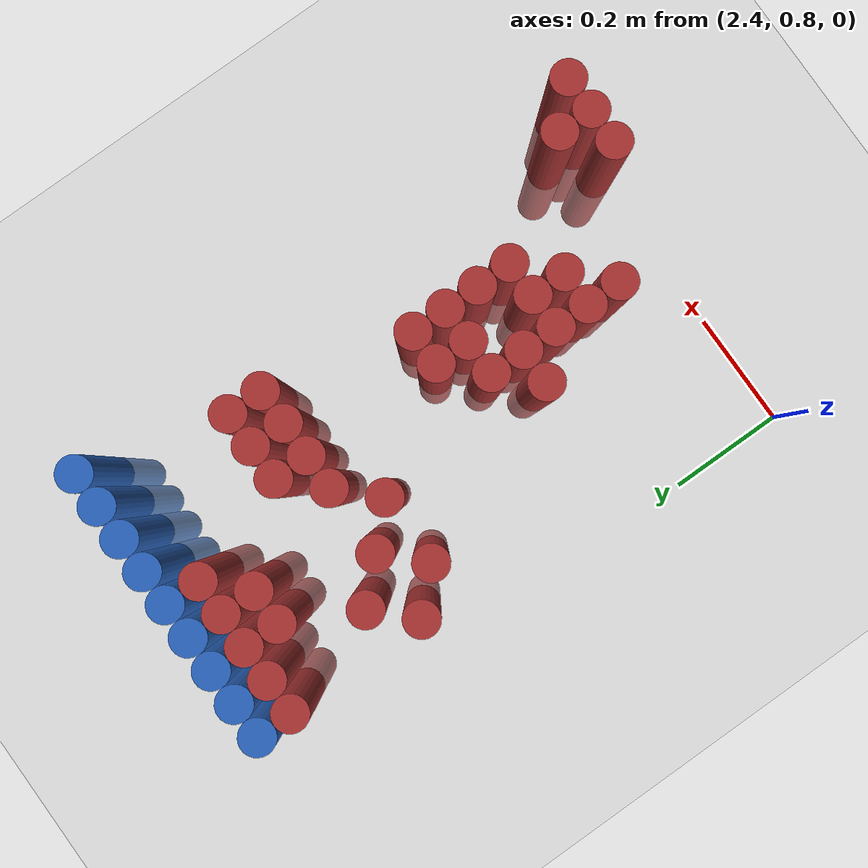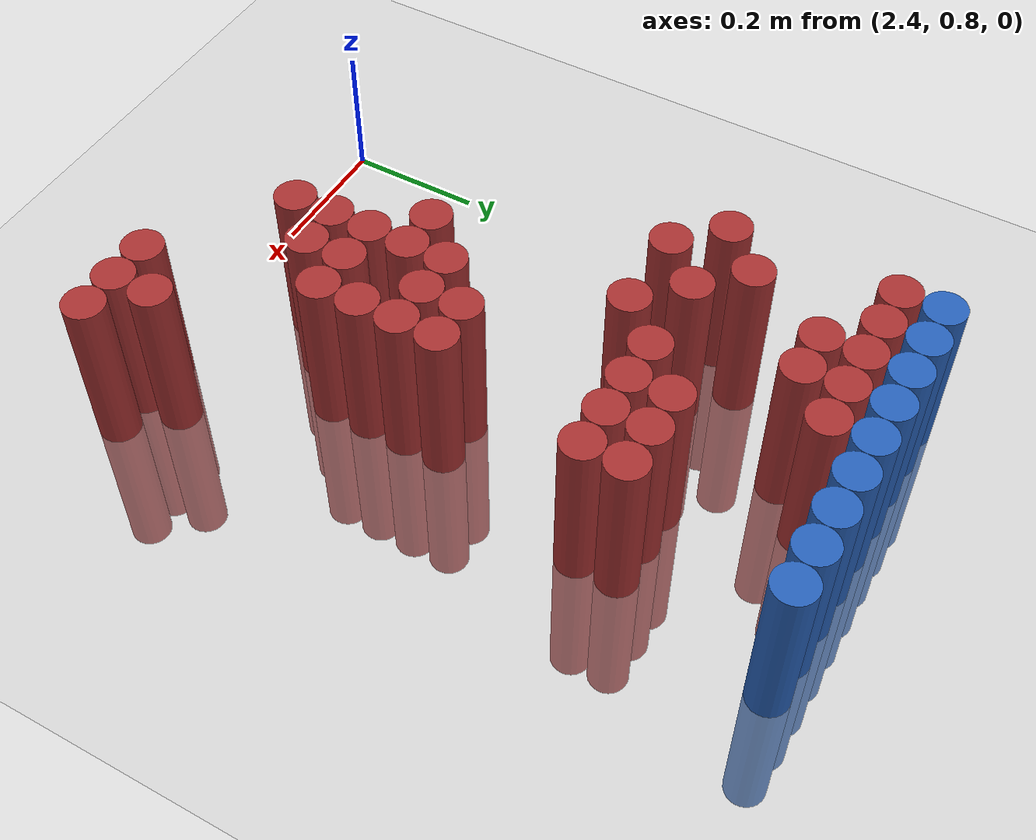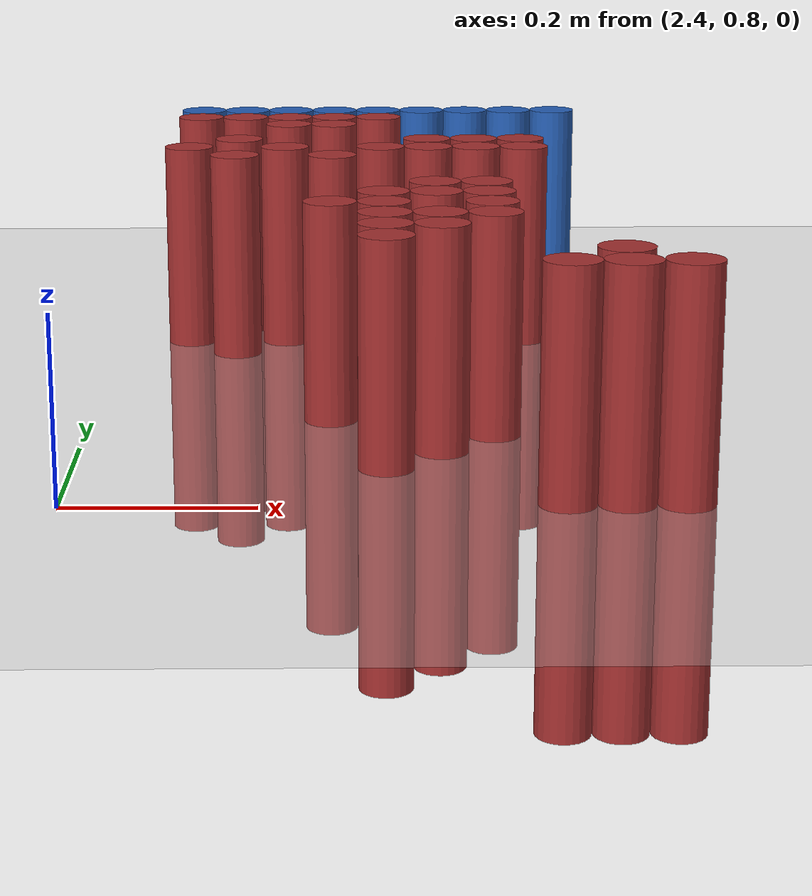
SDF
<sdf version="1.6">
 <world name="default">
  <model name="ground_plane">
   <static>1</static>
   <link name="link">
    <collision name="collision">
     <geometry><plane><normal>0 0 1</normal><size>100 100</size></plane></geometry>
     <surface><friction><ode><mu>100</mu><mu2>50</mu2></ode></friction></surface>
    </collision>
    <visual name="visual">
     <cast_shadows>0</cast_shadows>
     <geometry><plane><normal>0 0 1</normal><size>100 100</size></plane></geometry>
     <material>
      <script><uri>file://media/materials/scripts/gazebo.material</uri><name>Gazebo/Grey</name></script>
     </material>
    </visual>
   </link>
  </model>
  <model name="unit_cylinder_102">
   <static>1</static>
   <pose>2.490000 1.770000 0.000000 0.000000 0.000000 0.000000</pose>
   <link name="link">
    <inertial>
     <mass>1</mass>
     <inertia><ixx>0.145833</ixx><ixy>0</ixy><ixz>0</ixz><iyy>0.145833</iyy><iyz>0</iyz><izz>0.125</izz></inertia>
    </inertial>
    <collision name="collision">
     <geometry><cylinder><radius>0.030000</radius><length>0.5</length></cylinder></geometry>
    </collision>
    <visual name="visual">
     <geometry><cylinder><radius>0.030000</radius><length>0.5</length></cylinder></geometry>
     <material>
      <ambient>0.152000 0.379000 0.720000 1</ambient>
      <diffuse>0.152000 0.379000 0.720000 1</diffuse>
     </material>
     <material>
      <script><name>Gazebo/Grey</name><uri>file://media/materials/scripts/gazebo.material</uri></script>
     </material>
    </visual>
   </link>
  </model>
  <model name="unit_cylinder_103">
   <static>1</static>
   <pose>2.550000 1.770000 0.000000 0.000000 0.000000 0.000000</pose>
   <link name="link">
    <inertial>
     <mass>1</mass>
     <inertia><ixx>0.145833</ixx><ixy>0</ixy><ixz>0</ixz><iyy>0.145833</iyy><iyz>0</iyz><izz>0.125</izz></inertia>
    </inertial>
    <collision name="collision">
     <geometry><cylinder><radius>0.030000</radius><length>0.5</length></cylinder></geometry>
    </collision>
    <visual name="visual">
     <geometry><cylinder><radius>0.030000</radius><length>0.5</length></cylinder></geometry>
     <material>
      <ambient>0.152000 0.379000 0.720000 1</ambient>
      <diffuse>0.152000 0.379000 0.720000 1</diffuse>
     </material>
     <material>
      <script><name>Gazebo/Grey</name><uri>file://media/materials/scripts/gazebo.material</uri></script>
     </material>
    </visual>
   </link>
  </model>
  <model name="unit_cylinder_104">
   <static>1</static>
   <pose>2.610000 1.770000 0.000000 0.000000 0.000000 0.000000</pose>
   <link name="link">
    <inertial>
     <mass>1</mass>
     <inertia><ixx>0.145833</ixx><ixy>0</ixy><ixz>0</ixz><iyy>0.145833</iyy><iyz>0</iyz><izz>0.125</izz></inertia>
    </inertial>
    <collision name="collision">
     <geometry><cylinder><radius>0.030000</radius><length>0.5</length></cylinder></geometry>
    </collision>
    <visual name="visual">
     <geometry><cylinder><radius>0.030000</radius><length>0.5</length></cylinder></geometry>
     <material>
      <ambient>0.152000 0.379000 0.720000 1</ambient>
      <diffuse>0.152000 0.379000 0.720000 1</diffuse>
     </material>
     <material>
      <script><name>Gazebo/Grey</name><uri>file://media/materials/scripts/gazebo.material</uri></script>
     </material>
    </visual>
   </link>
  </model>
  <model name="unit_cylinder_105">
   <static>1</static>
   <pose>2.670000 1.770000 0.000000 0.000000 0.000000 0.000000</pose>
   <link name="link">
    <inertial>
     <mass>1</mass>
     <inertia><ixx>0.145833</ixx><ixy>0</ixy><ixz>0</ixz><iyy>0.145833</iyy><iyz>0</iyz><izz>0.125</izz></inertia>
    </inertial>
    <collision name="collision">
     <geometry><cylinder><radius>0.030000</radius><length>0.5</length></cylinder></geometry>
    </collision>
    <visual name="visual">
     <geometry><cylinder><radius>0.030000</radius><length>0.5</length></cylinder></geometry>
     <material>
      <ambient>0.152000 0.379000 0.720000 1</ambient>
      <diffuse>0.152000 0.379000 0.720000 1</diffuse>
     </material>
     <material>
      <script><name>Gazebo/Grey</name><uri>file://media/materials/scripts/gazebo.material</uri></script>
     </material>
    </visual>
   </link>
  </model>
  <model name="unit_cylinder_106">
   <static>1</static>
   <pose>2.730000 1.770000 0.000000 0.000000 0.000000 0.000000</pose>
   <link name="link">
    <inertial>
     <mass>1</mass>
     <inertia><ixx>0.145833</ixx><ixy>0</ixy><ixz>0</ixz><iyy>0.145833</iyy><iyz>0</iyz><izz>0.125</izz></inertia>
    </inertial>
    <collision name="collision">
     <geometry><cylinder><radius>0.030000</radius><length>0.5</length></cylinder></geometry>
    </collision>
    <visual name="visual">
     <geometry><cylinder><radius>0.030000</radius><length>0.5</length></cylinder></geometry>
     <material>
      <ambient>0.152000 0.379000 0.720000 1</ambient>
      <diffuse>0.152000 0.379000 0.720000 1</diffuse>
     </material>
     <material>
      <script><name>Gazebo/Grey</name><uri>file://media/materials/scripts/gazebo.material</uri></script>
     </material>
    </visual>
   </link>
  </model>
  <model name="unit_cylinder_107">
   <static>1</static>
   <pose>2.790000 1.770000 0.000000 0.000000 0.000000 0.000000</pose>
   <link name="link">
    <inertial>
     <mass>1</mass>
     <inertia><ixx>0.145833</ixx><ixy>0</ixy><ixz>0</ixz><iyy>0.145833</iyy><iyz>0</iyz><izz>0.125</izz></inertia>
    </inertial>
    <collision name="collision">
     <geometry><cylinder><radius>0.030000</radius><length>0.5</length></cylinder></geometry>
    </collision>
    <visual name="visual">
     <geometry><cylinder><radius>0.030000</radius><length>0.5</length></cylinder></geometry>
     <material>
      <ambient>0.152000 0.379000 0.720000 1</ambient>
      <diffuse>0.152000 0.379000 0.720000 1</diffuse>
     </material>
     <material>
      <script><name>Gazebo/Grey</name><uri>file://media/materials/scripts/gazebo.material</uri></script>
     </material>
    </visual>
   </link>
  </model>
  <model name="unit_cylinder_108">
   <static>1</static>
   <pose>2.850000 1.770000 0.000000 0.000000 0.000000 0.000000</pose>
   <link name="link">
    <inertial>
     <mass>1</mass>
     <inertia><ixx>0.145833</ixx><ixy>0</ixy><ixz>0</ixz><iyy>0.145833</iyy><iyz>0</iyz><izz>0.125</izz></inertia>
    </inertial>
    <collision name="collision">
     <geometry><cylinder><radius>0.030000</radius><length>0.5</length></cylinder></geometry>
    </collision>
    <visual name="visual">
     <geometry><cylinder><radius>0.030000</radius><length>0.5</length></cylinder></geometry>
     <material>
      <ambient>0.152000 0.379000 0.720000 1</ambient>
      <diffuse>0.152000 0.379000 0.720000 1</diffuse>
     </material>
     <material>
      <script><name>Gazebo/Grey</name><uri>file://media/materials/scripts/gazebo.material</uri></script>
     </material>
    </visual>
   </link>
  </model>
  <model name="unit_cylinder_109">
   <static>1</static>
   <pose>2.910000 1.770000 0.000000 0.000000 0.000000 0.000000</pose>
   <link name="link">
    <inertial>
     <mass>1</mass>
     <inertia><ixx>0.145833</ixx><ixy>0</ixy><ixz>0</ixz><iyy>0.145833</iyy><iyz>0</iyz><izz>0.125</izz></inertia>
    </inertial>
    <collision name="collision">
     <geometry><cylinder><radius>0.030000</radius><length>0.5</length></cylinder></geometry>
    </collision>
    <visual name="visual">
     <geometry><cylinder><radius>0.030000</radius><length>0.5</length></cylinder></geometry>
     <material>
      <ambient>0.152000 0.379000 0.720000 1</ambient>
      <diffuse>0.152000 0.379000 0.720000 1</diffuse>
     </material>
     <material>
      <script><name>Gazebo/Grey</name><uri>file://media/materials/scripts/gazebo.material</uri></script>
     </material>
    </visual>
   </link>
  </model>
  <model name="unit_cylinder_110">
   <static>1</static>
   <pose>2.970000 1.770000 0.000000 0.000000 0.000000 0.000000</pose>
   <link name="link">
    <inertial>
     <mass>1</mass>
     <inertia><ixx>0.145833</ixx><ixy>0</ixy><ixz>0</ixz><iyy>0.145833</iyy><iyz>0</iyz><izz>0.125</izz></inertia>
    </inertial>
    <collision name="collision">
     <geometry><cylinder><radius>0.030000</radius><length>0.5</length></cylinder></geometry>
    </collision>
    <visual name="visual">
     <geometry><cylinder><radius>0.030000</radius><length>0.5</length></cylinder></geometry>
     <material>
      <ambient>0.152000 0.379000 0.720000 1</ambient>
      <diffuse>0.152000 0.379000 0.720000 1</diffuse>
     </material>
     <material>
      <script><name>Gazebo/Grey</name><uri>file://media/materials/scripts/gazebo.material</uri></script>
     </material>
    </visual>
   </link>
  </model>
  <model name="unit_cylinder_131">
   <static>1</static>
   <pose>2.490000 1.710000 0.000000 0.000000 0.000000 0.000000</pose>
   <link name="link">
    <inertial>
     <mass>1</mass>
     <inertia><ixx>0.145833</ixx><ixy>0</ixy><ixz>0</ixz><iyy>0.145833</iyy><iyz>0</iyz><izz>0.125</izz></inertia>
    </inertial>
    <collision name="collision">
     <geometry><cylinder><radius>0.030000</radius><length>0.5</length></cylinder></geometry>
    </collision>
    <visual name="visual">
     <geometry><cylinder><radius>0.030000</radius><length>0.5</length></cylinder></geometry>
     <material>
      <ambient>0.648000 0.192000 0.192000 1</ambient>
      <diffuse>0.648000 0.192000 0.192000 1</diffuse>
     </material>
     <material>
      <script><name>Gazebo/Grey</name><uri>file://media/materials/scripts/gazebo.material</uri></script>
     </material>
    </visual>
   </link>
  </model>
  <model name="unit_cylinder_132">
   <static>1</static>
   <pose>2.550000 1.710000 0.000000 0.000000 0.000000 0.000000</pose>
   <link name="link">
    <inertial>
     <mass>1</mass>
     <inertia><ixx>0.145833</ixx><ixy>0</ixy><ixz>0</ixz><iyy>0.145833</iyy><iyz>0</iyz><izz>0.125</izz></inertia>
    </inertial>
    <collision name="collision">
     <geometry><cylinder><radius>0.030000</radius><length>0.5</length></cylinder></geometry>
    </collision>
    <visual name="visual">
     <geometry><cylinder><radius>0.030000</radius><length>0.5</length></cylinder></geometry>
     <material>
      <ambient>0.648000 0.192000 0.192000 1</ambient>
      <diffuse>0.648000 0.192000 0.192000 1</diffuse>
     </material>
     <material>
      <script><name>Gazebo/Grey</name><uri>file://media/materials/scripts/gazebo.material</uri></script>
     </material>
    </visual>
   </link>
  </model>
  <model name="unit_cylinder_133">
   <static>1</static>
   <pose>2.610000 1.710000 0.000000 0.000000 0.000000 0.000000</pose>
   <link name="link">
    <inertial>
     <mass>1</mass>
     <inertia><ixx>0.145833</ixx><ixy>0</ixy><ixz>0</ixz><iyy>0.145833</iyy><iyz>0</iyz><izz>0.125</izz></inertia>
    </inertial>
    <collision name="collision">
     <geometry><cylinder><radius>0.030000</radius><length>0.5</length></cylinder></geometry>
    </collision>
    <visual name="visual">
     <geometry><cylinder><radius>0.030000</radius><length>0.5</length></cylinder></geometry>
     <material>
      <ambient>0.648000 0.192000 0.192000 1</ambient>
      <diffuse>0.648000 0.192000 0.192000 1</diffuse>
     </material>
     <material>
      <script><name>Gazebo/Grey</name><uri>file://media/materials/scripts/gazebo.material</uri></script>
     </material>
    </visual>
   </link>
  </model>
  <model name="unit_cylinder_134">
   <static>1</static>
   <pose>2.670000 1.710000 0.000000 0.000000 0.000000 0.000000</pose>
   <link name="link">
    <inertial>
     <mass>1</mass>
     <inertia><ixx>0.145833</ixx><ixy>0</ixy><ixz>0</ixz><iyy>0.145833</iyy><iyz>0</iyz><izz>0.125</izz></inertia>
    </inertial>
    <collision name="collision">
     <geometry><cylinder><radius>0.030000</radius><length>0.5</length></cylinder></geometry>
    </collision>
    <visual name="visual">
     <geometry><cylinder><radius>0.030000</radius><length>0.5</length></cylinder></geometry>
     <material>
      <ambient>0.648000 0.192000 0.192000 1</ambient>
      <diffuse>0.648000 0.192000 0.192000 1</diffuse>
     </material>
     <material>
      <script><name>Gazebo/Grey</name><uri>file://media/materials/scripts/gazebo.material</uri></script>
     </material>
    </visual>
   </link>
  </model>
  <model name="unit_cylinder_135">
   <static>1</static>
   <pose>2.730000 1.710000 0.000000 0.000000 0.000000 0.000000</pose>
   <link name="link">
    <inertial>
     <mass>1</mass>
     <inertia><ixx>0.145833</ixx><ixy>0</ixy><ixz>0</ixz><iyy>0.145833</iyy><iyz>0</iyz><izz>0.125</izz></inertia>
    </inertial>
    <collision name="collision">
     <geometry><cylinder><radius>0.030000</radius><length>0.5</length></cylinder></geometry>
    </collision>
    <visual name="visual">
     <geometry><cylinder><radius>0.030000</radius><length>0.5</length></cylinder></geometry>
     <material>
      <ambient>0.648000 0.192000 0.192000 1</ambient>
      <diffuse>0.648000 0.192000 0.192000 1</diffuse>
     </material>
     <material>
      <script><name>Gazebo/Grey</name><uri>file://media/materials/scripts/gazebo.material</uri></script>
     </material>
    </visual>
   </link>
  </model>
  <model name="unit_cylinder_141">
   <static>1</static>
   <pose>2.610000 1.650000 0.000000 0.000000 0.000000 0.000000</pose>
   <link name="link">
    <inertial>
     <mass>1</mass>
     <inertia><ixx>0.145833</ixx><ixy>0</ixy><ixz>0</ixz><iyy>0.145833</iyy><iyz>0</iyz><izz>0.125</izz></inertia>
    </inertial>
    <collision name="collision">
     <geometry><cylinder><radius>0.030000</radius><length>0.5</length></cylinder></geometry>
    </collision>
    <visual name="visual">
     <geometry><cylinder><radius>0.030000</radius><length>0.5</length></cylinder></geometry>
     <material>
      <ambient>0.648000 0.192000 0.192000 1</ambient>
      <diffuse>0.648000 0.192000 0.192000 1</diffuse>
     </material>
     <material>
      <script><name>Gazebo/Grey</name><uri>file://media/materials/scripts/gazebo.material</uri></script>
     </material>
    </visual>
   </link>
  </model>
  <model name="unit_cylinder_142">
   <static>1</static>
   <pose>2.670000 1.650000 0.000000 0.000000 0.000000 0.000000</pose>
   <link name="link">
    <inertial>
     <mass>1</mass>
     <inertia><ixx>0.145833</ixx><ixy>0</ixy><ixz>0</ixz><iyy>0.145833</iyy><iyz>0</iyz><izz>0.125</izz></inertia>
    </inertial>
    <collision name="collision">
     <geometry><cylinder><radius>0.030000</radius><length>0.5</length></cylinder></geometry>
    </collision>
    <visual name="visual">
     <geometry><cylinder><radius>0.030000</radius><length>0.5</length></cylinder></geometry>
     <material>
      <ambient>0.648000 0.192000 0.192000 1</ambient>
      <diffuse>0.648000 0.192000 0.192000 1</diffuse>
     </material>
     <material>
      <script><name>Gazebo/Grey</name><uri>file://media/materials/scripts/gazebo.material</uri></script>
     </material>
    </visual>
   </link>
  </model>
  <model name="unit_cylinder_146">
   <static>1</static>
   <pose>2.550000 1.530000 0.000000 0.000000 0.000000 0.000000</pose>
   <link name="link">
    <inertial>
     <mass>1</mass>
     <inertia><ixx>0.145833</ixx><ixy>0</ixy><ixz>0</ixz><iyy>0.145833</iyy><iyz>0</iyz><izz>0.125</izz></inertia>
    </inertial>
    <collision name="collision">
     <geometry><cylinder><radius>0.030000</radius><length>0.5</length></cylinder></geometry>
    </collision>
    <visual name="visual">
     <geometry><cylinder><radius>0.030000</radius><length>0.5</length></cylinder></geometry>
     <material>
      <ambient>0.648000 0.192000 0.192000 1</ambient>
      <diffuse>0.648000 0.192000 0.192000 1</diffuse>
     </material>
     <material>
      <script><name>Gazebo/Grey</name><uri>file://media/materials/scripts/gazebo.material</uri></script>
     </material>
    </visual>
   </link>
  </model>
  <model name="unit_cylinder_147">
   <static>1</static>
   <pose>2.790000 1.530000 0.000000 0.000000 0.000000 0.000000</pose>
   <link name="link">
    <inertial>
     <mass>1</mass>
     <inertia><ixx>0.145833</ixx><ixy>0</ixy><ixz>0</ixz><iyy>0.145833</iyy><iyz>0</iyz><izz>0.125</izz></inertia>
    </inertial>
    <collision name="collision">
     <geometry><cylinder><radius>0.030000</radius><length>0.5</length></cylinder></geometry>
    </collision>
    <visual name="visual">
     <geometry><cylinder><radius>0.030000</radius><length>0.5</length></cylinder></geometry>
     <material>
      <ambient>0.648000 0.192000 0.192000 1</ambient>
      <diffuse>0.648000 0.192000 0.192000 1</diffuse>
     </material>
     <material>
      <script><name>Gazebo/Grey</name><uri>file://media/materials/scripts/gazebo.material</uri></script>
     </material>
    </visual>
   </link>
  </model>
  <model name="unit_cylinder_148">
   <static>1</static>
   <pose>2.850000 1.530000 0.000000 0.000000 0.000000 0.000000</pose>
   <link name="link">
    <inertial>
     <mass>1</mass>
     <inertia><ixx>0.145833</ixx><ixy>0</ixy><ixz>0</ixz><iyy>0.145833</iyy><iyz>0</iyz><izz>0.125</izz></inertia>
    </inertial>
    <collision name="collision">
     <geometry><cylinder><radius>0.030000</radius><length>0.5</length></cylinder></geometry>
    </collision>
    <visual name="visual">
     <geometry><cylinder><radius>0.030000</radius><length>0.5</length></cylinder></geometry>
     <material>
      <ambient>0.648000 0.192000 0.192000 1</ambient>
      <diffuse>0.648000 0.192000 0.192000 1</diffuse>
     </material>
     <material>
      <script><name>Gazebo/Grey</name><uri>file://media/materials/scripts/gazebo.material</uri></script>
     </material>
    </visual>
   </link>
  </model>
  <model name="unit_cylinder_149">
   <static>1</static>
   <pose>2.910000 1.530000 0.000000 0.000000 0.000000 0.000000</pose>
   <link name="link">
    <inertial>
     <mass>1</mass>
     <inertia><ixx>0.145833</ixx><ixy>0</ixy><ixz>0</ixz><iyy>0.145833</iyy><iyz>0</iyz><izz>0.125</izz></inertia>
    </inertial>
    <collision name="collision">
     <geometry><cylinder><radius>0.030000</radius><length>0.5</length></cylinder></geometry>
    </collision>
    <visual name="visual">
     <geometry><cylinder><radius>0.030000</radius><length>0.5</length></cylinder></geometry>
     <material>
      <ambient>0.648000 0.192000 0.192000 1</ambient>
      <diffuse>0.648000 0.192000 0.192000 1</diffuse>
     </material>
     <material>
      <script><name>Gazebo/Grey</name><uri>file://media/materials/scripts/gazebo.material</uri></script>
     </material>
    </visual>
   </link>
  </model>
  <model name="unit_cylinder_152">
   <static>1</static>
   <pose>2.490000 1.470000 0.000000 0.000000 0.000000 0.000000</pose>
   <link name="link">
    <inertial>
     <mass>1</mass>
     <inertia><ixx>0.145833</ixx><ixy>0</ixy><ixz>0</ixz><iyy>0.145833</iyy><iyz>0</iyz><izz>0.125</izz></inertia>
    </inertial>
    <collision name="collision">
     <geometry><cylinder><radius>0.030000</radius><length>0.5</length></cylinder></geometry>
    </collision>
    <visual name="visual">
     <geometry><cylinder><radius>0.030000</radius><length>0.5</length></cylinder></geometry>
     <material>
      <ambient>0.648000 0.192000 0.192000 1</ambient>
      <diffuse>0.648000 0.192000 0.192000 1</diffuse>
     </material>
     <material>
      <script><name>Gazebo/Grey</name><uri>file://media/materials/scripts/gazebo.material</uri></script>
     </material>
    </visual>
   </link>
  </model>
  <model name="unit_cylinder_153">
   <static>1</static>
   <pose>2.610000 1.470000 0.000000 0.000000 0.000000 0.000000</pose>
   <link name="link">
    <inertial>
     <mass>1</mass>
     <inertia><ixx>0.145833</ixx><ixy>0</ixy><ixz>0</ixz><iyy>0.145833</iyy><iyz>0</iyz><izz>0.125</izz></inertia>
    </inertial>
    <collision name="collision">
     <geometry><cylinder><radius>0.030000</radius><length>0.5</length></cylinder></geometry>
    </collision>
    <visual name="visual">
     <geometry><cylinder><radius>0.030000</radius><length>0.5</length></cylinder></geometry>
     <material>
      <ambient>0.648000 0.192000 0.192000 1</ambient>
      <diffuse>0.648000 0.192000 0.192000 1</diffuse>
     </material>
     <material>
      <script><name>Gazebo/Grey</name><uri>file://media/materials/scripts/gazebo.material</uri></script>
     </material>
    </visual>
   </link>
  </model>
  <model name="unit_cylinder_154">
   <static>1</static>
   <pose>2.730000 1.470000 0.000000 0.000000 0.000000 0.000000</pose>
   <link name="link">
    <inertial>
     <mass>1</mass>
     <inertia><ixx>0.145833</ixx><ixy>0</ixy><ixz>0</ixz><iyy>0.145833</iyy><iyz>0</iyz><izz>0.125</izz></inertia>
    </inertial>
    <collision name="collision">
     <geometry><cylinder><radius>0.030000</radius><length>0.5</length></cylinder></geometry>
    </collision>
    <visual name="visual">
     <geometry><cylinder><radius>0.030000</radius><length>0.5</length></cylinder></geometry>
     <material>
      <ambient>0.648000 0.192000 0.192000 1</ambient>
      <diffuse>0.648000 0.192000 0.192000 1</diffuse>
     </material>
     <material>
      <script><name>Gazebo/Grey</name><uri>file://media/materials/scripts/gazebo.material</uri></script>
     </material>
    </visual>
   </link>
  </model>
  <model name="unit_cylinder_155">
   <static>1</static>
   <pose>2.790000 1.470000 0.000000 0.000000 0.000000 0.000000</pose>
   <link name="link">
    <inertial>
     <mass>1</mass>
     <inertia><ixx>0.145833</ixx><ixy>0</ixy><ixz>0</ixz><iyy>0.145833</iyy><iyz>0</iyz><izz>0.125</izz></inertia>
    </inertial>
    <collision name="collision">
     <geometry><cylinder><radius>0.030000</radius><length>0.5</length></cylinder></geometry>
    </collision>
    <visual name="visual">
     <geometry><cylinder><radius>0.030000</radius><length>0.5</length></cylinder></geometry>
     <material>
      <ambient>0.648000 0.192000 0.192000 1</ambient>
      <diffuse>0.648000 0.192000 0.192000 1</diffuse>
     </material>
     <material>
      <script><name>Gazebo/Grey</name><uri>file://media/materials/scripts/gazebo.material</uri></script>
     </material>
    </visual>
   </link>
  </model>
  <model name="unit_cylinder_156">
   <static>1</static>
   <pose>2.850000 1.470000 0.000000 0.000000 0.000000 0.000000</pose>
   <link name="link">
    <inertial>
     <mass>1</mass>
     <inertia><ixx>0.145833</ixx><ixy>0</ixy><ixz>0</ixz><iyy>0.145833</iyy><iyz>0</iyz><izz>0.125</izz></inertia>
    </inertial>
    <collision name="collision">
     <geometry><cylinder><radius>0.030000</radius><length>0.5</length></cylinder></geometry>
    </collision>
    <visual name="visual">
     <geometry><cylinder><radius>0.030000</radius><length>0.5</length></cylinder></geometry>
     <material>
      <ambient>0.648000 0.192000 0.192000 1</ambient>
      <diffuse>0.648000 0.192000 0.192000 1</diffuse>
     </material>
     <material>
      <script><name>Gazebo/Grey</name><uri>file://media/materials/scripts/gazebo.material</uri></script>
     </material>
    </visual>
   </link>
  </model>
  <model name="unit_cylinder_157">
   <static>1</static>
   <pose>2.910000 1.470000 0.000000 0.000000 0.000000 0.000000</pose>
   <link name="link">
    <inertial>
     <mass>1</mass>
     <inertia><ixx>0.145833</ixx><ixy>0</ixy><ixz>0</ixz><iyy>0.145833</iyy><iyz>0</iyz><izz>0.125</izz></inertia>
    </inertial>
    <collision name="collision">
     <geometry><cylinder><radius>0.030000</radius><length>0.5</length></cylinder></geometry>
    </collision>
    <visual name="visual">
     <geometry><cylinder><radius>0.030000</radius><length>0.5</length></cylinder></geometry>
     <material>
      <ambient>0.648000 0.192000 0.192000 1</ambient>
      <diffuse>0.648000 0.192000 0.192000 1</diffuse>
     </material>
     <material>
      <script><name>Gazebo/Grey</name><uri>file://media/materials/scripts/gazebo.material</uri></script>
     </material>
    </visual>
   </link>
  </model>
  <model name="unit_cylinder_160">
   <static>1</static>
   <pose>2.550000 1.410000 0.000000 0.000000 0.000000 0.000000</pose>
   <link name="link">
    <inertial>
     <mass>1</mass>
     <inertia><ixx>0.145833</ixx><ixy>0</ixy><ixz>0</ixz><iyy>0.145833</iyy><iyz>0</iyz><izz>0.125</izz></inertia>
    </inertial>
    <collision name="collision">
     <geometry><cylinder><radius>0.030000</radius><length>0.5</length></cylinder></geometry>
    </collision>
    <visual name="visual">
     <geometry><cylinder><radius>0.030000</radius><length>0.5</length></cylinder></geometry>
     <material>
      <ambient>0.648000 0.192000 0.192000 1</ambient>
      <diffuse>0.648000 0.192000 0.192000 1</diffuse>
     </material>
     <material>
      <script><name>Gazebo/Grey</name><uri>file://media/materials/scripts/gazebo.material</uri></script>
     </material>
    </visual>
   </link>
  </model>
  <model name="unit_cylinder_161">
   <static>1</static>
   <pose>2.670000 1.410000 0.000000 0.000000 0.000000 0.000000</pose>
   <link name="link">
    <inertial>
     <mass>1</mass>
     <inertia><ixx>0.145833</ixx><ixy>0</ixy><ixz>0</ixz><iyy>0.145833</iyy><iyz>0</iyz><izz>0.125</izz></inertia>
    </inertial>
    <collision name="collision">
     <geometry><cylinder><radius>0.030000</radius><length>0.5</length></cylinder></geometry>
    </collision>
    <visual name="visual">
     <geometry><cylinder><radius>0.030000</radius><length>0.5</length></cylinder></geometry>
     <material>
      <ambient>0.648000 0.192000 0.192000 1</ambient>
      <diffuse>0.648000 0.192000 0.192000 1</diffuse>
     </material>
     <material>
      <script><name>Gazebo/Grey</name><uri>file://media/materials/scripts/gazebo.material</uri></script>
     </material>
    </visual>
   </link>
  </model>
  <model name="unit_cylinder_175">
   <static>1</static>
   <pose>2.790000 1.230000 0.000000 0.000000 0.000000 0.000000</pose>
   <link name="link">
    <inertial>
     <mass>1</mass>
     <inertia><ixx>0.145833</ixx><ixy>0</ixy><ixz>0</ixz><iyy>0.145833</iyy><iyz>0</iyz><izz>0.125</izz></inertia>
    </inertial>
    <collision name="collision">
     <geometry><cylinder><radius>0.030000</radius><length>0.5</length></cylinder></geometry>
    </collision>
    <visual name="visual">
     <geometry><cylinder><radius>0.030000</radius><length>0.5</length></cylinder></geometry>
     <material>
      <ambient>0.648000 0.192000 0.192000 1</ambient>
      <diffuse>0.648000 0.192000 0.192000 1</diffuse>
     </material>
     <material>
      <script><name>Gazebo/Grey</name><uri>file://media/materials/scripts/gazebo.material</uri></script>
     </material>
    </visual>
   </link>
  </model>
  <model name="unit_cylinder_176">
   <static>1</static>
   <pose>2.850000 1.230000 0.000000 0.000000 0.000000 0.000000</pose>
   <link name="link">
    <inertial>
     <mass>1</mass>
     <inertia><ixx>0.145833</ixx><ixy>0</ixy><ixz>0</ixz><iyy>0.145833</iyy><iyz>0</iyz><izz>0.125</izz></inertia>
    </inertial>
    <collision name="collision">
     <geometry><cylinder><radius>0.030000</radius><length>0.5</length></cylinder></geometry>
    </collision>
    <visual name="visual">
     <geometry><cylinder><radius>0.030000</radius><length>0.5</length></cylinder></geometry>
     <material>
      <ambient>0.648000 0.192000 0.192000 1</ambient>
      <diffuse>0.648000 0.192000 0.192000 1</diffuse>
     </material>
     <material>
      <script><name>Gazebo/Grey</name><uri>file://media/materials/scripts/gazebo.material</uri></script>
     </material>
    </visual>
   </link>
  </model>
  <model name="unit_cylinder_181">
   <static>1</static>
   <pose>2.730000 1.170000 0.000000 0.000000 0.000000 0.000000</pose>
   <link name="link">
    <inertial>
     <mass>1</mass>
     <inertia><ixx>0.145833</ixx><ixy>0</ixy><ixz>0</ixz><iyy>0.145833</iyy><iyz>0</iyz><izz>0.125</izz></inertia>
    </inertial>
    <collision name="collision">
     <geometry><cylinder><radius>0.030000</radius><length>0.5</length></cylinder></geometry>
    </collision>
    <visual name="visual">
     <geometry><cylinder><radius>0.030000</radius><length>0.5</length></cylinder></geometry>
     <material>
      <ambient>0.648000 0.192000 0.192000 1</ambient>
      <diffuse>0.648000 0.192000 0.192000 1</diffuse>
     </material>
     <material>
      <script><name>Gazebo/Grey</name><uri>file://media/materials/scripts/gazebo.material</uri></script>
     </material>
    </visual>
   </link>
  </model>
  <model name="unit_cylinder_182">
   <static>1</static>
   <pose>2.790000 1.170000 0.000000 0.000000 0.000000 0.000000</pose>
   <link name="link">
    <inertial>
     <mass>1</mass>
     <inertia><ixx>0.145833</ixx><ixy>0</ixy><ixz>0</ixz><iyy>0.145833</iyy><iyz>0</iyz><izz>0.125</izz></inertia>
    </inertial>
    <collision name="collision">
     <geometry><cylinder><radius>0.030000</radius><length>0.5</length></cylinder></geometry>
    </collision>
    <visual name="visual">
     <geometry><cylinder><radius>0.030000</radius><length>0.5</length></cylinder></geometry>
     <material>
      <ambient>0.648000 0.192000 0.192000 1</ambient>
      <diffuse>0.648000 0.192000 0.192000 1</diffuse>
     </material>
     <material>
      <script><name>Gazebo/Grey</name><uri>file://media/materials/scripts/gazebo.material</uri></script>
     </material>
    </visual>
   </link>
  </model>
  <model name="unit_cylinder_183">
   <static>1</static>
   <pose>2.850000 1.170000 0.000000 0.000000 0.000000 0.000000</pose>
   <link name="link">
    <inertial>
     <mass>1</mass>
     <inertia><ixx>0.145833</ixx><ixy>0</ixy><ixz>0</ixz><iyy>0.145833</iyy><iyz>0</iyz><izz>0.125</izz></inertia>
    </inertial>
    <collision name="collision">
     <geometry><cylinder><radius>0.030000</radius><length>0.5</length></cylinder></geometry>
    </collision>
    <visual name="visual">
     <geometry><cylinder><radius>0.030000</radius><length>0.5</length></cylinder></geometry>
     <material>
      <ambient>0.648000 0.192000 0.192000 1</ambient>
      <diffuse>0.648000 0.192000 0.192000 1</diffuse>
     </material>
     <material>
      <script><name>Gazebo/Grey</name><uri>file://media/materials/scripts/gazebo.material</uri></script>
     </material>
    </visual>
   </link>
  </model>
  <model name="unit_cylinder_189">
   <static>1</static>
   <pose>2.670000 1.110000 0.000000 0.000000 0.000000 0.000000</pose>
   <link name="link">
    <inertial>
     <mass>1</mass>
     <inertia><ixx>0.145833</ixx><ixy>0</ixy><ixz>0</ixz><iyy>0.145833</iyy><iyz>0</iyz><izz>0.125</izz></inertia>
    </inertial>
    <collision name="collision">
     <geometry><cylinder><radius>0.030000</radius><length>0.5</length></cylinder></geometry>
    </collision>
    <visual name="visual">
     <geometry><cylinder><radius>0.030000</radius><length>0.5</length></cylinder></geometry>
     <material>
      <ambient>0.648000 0.192000 0.192000 1</ambient>
      <diffuse>0.648000 0.192000 0.192000 1</diffuse>
     </material>
     <material>
      <script><name>Gazebo/Grey</name><uri>file://media/materials/scripts/gazebo.material</uri></script>
     </material>
    </visual>
   </link>
  </model>
  <model name="unit_cylinder_190">
   <static>1</static>
   <pose>2.730000 1.110000 0.000000 0.000000 0.000000 0.000000</pose>
   <link name="link">
    <inertial>
     <mass>1</mass>
     <inertia><ixx>0.145833</ixx><ixy>0</ixy><ixz>0</ixz><iyy>0.145833</iyy><iyz>0</iyz><izz>0.125</izz></inertia>
    </inertial>
    <collision name="collision">
     <geometry><cylinder><radius>0.030000</radius><length>0.5</length></cylinder></geometry>
    </collision>
    <visual name="visual">
     <geometry><cylinder><radius>0.030000</radius><length>0.5</length></cylinder></geometry>
     <material>
      <ambient>0.648000 0.192000 0.192000 1</ambient>
      <diffuse>0.648000 0.192000 0.192000 1</diffuse>
     </material>
     <material>
      <script><name>Gazebo/Grey</name><uri>file://media/materials/scripts/gazebo.material</uri></script>
     </material>
    </visual>
   </link>
  </model>
  <model name="unit_cylinder_191">
   <static>1</static>
   <pose>2.850000 1.110000 0.000000 0.000000 0.000000 0.000000</pose>
   <link name="link">
    <inertial>
     <mass>1</mass>
     <inertia><ixx>0.145833</ixx><ixy>0</ixy><ixz>0</ixz><iyy>0.145833</iyy><iyz>0</iyz><izz>0.125</izz></inertia>
    </inertial>
    <collision name="collision">
     <geometry><cylinder><radius>0.030000</radius><length>0.5</length></cylinder></geometry>
    </collision>
    <visual name="visual">
     <geometry><cylinder><radius>0.030000</radius><length>0.5</length></cylinder></geometry>
     <material>
      <ambient>0.648000 0.192000 0.192000 1</ambient>
      <diffuse>0.648000 0.192000 0.192000 1</diffuse>
     </material>
     <material>
      <script><name>Gazebo/Grey</name><uri>file://media/materials/scripts/gazebo.material</uri></script>
     </material>
    </visual>
   </link>
  </model>
  <model name="unit_cylinder_198">
   <static>1</static>
   <pose>2.730000 1.050000 0.000000 0.000000 0.000000 0.000000</pose>
   <link name="link">
    <inertial>
     <mass>1</mass>
     <inertia><ixx>0.145833</ixx><ixy>0</ixy><ixz>0</ixz><iyy>0.145833</iyy><iyz>0</iyz><izz>0.125</izz></inertia>
    </inertial>
    <collision name="collision">
     <geometry><cylinder><radius>0.030000</radius><length>0.5</length></cylinder></geometry>
    </collision>
    <visual name="visual">
     <geometry><cylinder><radius>0.030000</radius><length>0.5</length></cylinder></geometry>
     <material>
      <ambient>0.648000 0.192000 0.192000 1</ambient>
      <diffuse>0.648000 0.192000 0.192000 1</diffuse>
     </material>
     <material>
      <script><name>Gazebo/Grey</name><uri>file://media/materials/scripts/gazebo.material</uri></script>
     </material>
    </visual>
   </link>
  </model>
  <model name="unit_cylinder_199">
   <static>1</static>
   <pose>2.790000 1.050000 0.000000 0.000000 0.000000 0.000000</pose>
   <link name="link">
    <inertial>
     <mass>1</mass>
     <inertia><ixx>0.145833</ixx><ixy>0</ixy><ixz>0</ixz><iyy>0.145833</iyy><iyz>0</iyz><izz>0.125</izz></inertia>
    </inertial>
    <collision name="collision">
     <geometry><cylinder><radius>0.030000</radius><length>0.5</length></cylinder></geometry>
    </collision>
    <visual name="visual">
     <geometry><cylinder><radius>0.030000</radius><length>0.5</length></cylinder></geometry>
     <material>
      <ambient>0.648000 0.192000 0.192000 1</ambient>
      <diffuse>0.648000 0.192000 0.192000 1</diffuse>
     </material>
     <material>
      <script><name>Gazebo/Grey</name><uri>file://media/materials/scripts/gazebo.material</uri></script>
     </material>
    </visual>
   </link>
  </model>
  <model name="unit_cylinder_200">
   <static>1</static>
   <pose>2.850000 1.050000 0.000000 0.000000 0.000000 0.000000</pose>
   <link name="link">
    <inertial>
     <mass>1</mass>
     <inertia><ixx>0.145833</ixx><ixy>0</ixy><ixz>0</ixz><iyy>0.145833</iyy><iyz>0</iyz><izz>0.125</izz></inertia>
    </inertial>
    <collision name="collision">
     <geometry><cylinder><radius>0.030000</radius><length>0.5</length></cylinder></geometry>
    </collision>
    <visual name="visual">
     <geometry><cylinder><radius>0.030000</radius><length>0.5</length></cylinder></geometry>
     <material>
      <ambient>0.648000 0.192000 0.192000 1</ambient>
      <diffuse>0.648000 0.192000 0.192000 1</diffuse>
     </material>
     <material>
      <script><name>Gazebo/Grey</name><uri>file://media/materials/scripts/gazebo.material</uri></script>
     </material>
    </visual>
   </link>
  </model>
  <model name="unit_cylinder_204">
   <static>1</static>
   <pose>2.730000 0.990000 0.000000 0.000000 0.000000 0.000000</pose>
   <link name="link">
    <inertial>
     <mass>1</mass>
     <inertia><ixx>0.145833</ixx><ixy>0</ixy><ixz>0</ixz><iyy>0.145833</iyy><iyz>0</iyz><izz>0.125</izz></inertia>
    </inertial>
    <collision name="collision">
     <geometry><cylinder><radius>0.030000</radius><length>0.5</length></cylinder></geometry>
    </collision>
    <visual name="visual">
     <geometry><cylinder><radius>0.030000</radius><length>0.5</length></cylinder></geometry>
     <material>
      <ambient>0.648000 0.192000 0.192000 1</ambient>
      <diffuse>0.648000 0.192000 0.192000 1</diffuse>
     </material>
     <material>
      <script><name>Gazebo/Grey</name><uri>file://media/materials/scripts/gazebo.material</uri></script>
     </material>
    </visual>
   </link>
  </model>
  <model name="unit_cylinder_205">
   <static>1</static>
   <pose>2.790000 0.990000 0.000000 0.000000 0.000000 0.000000</pose>
   <link name="link">
    <inertial>
     <mass>1</mass>
     <inertia><ixx>0.145833</ixx><ixy>0</ixy><ixz>0</ixz><iyy>0.145833</iyy><iyz>0</iyz><izz>0.125</izz></inertia>
    </inertial>
    <collision name="collision">
     <geometry><cylinder><radius>0.030000</radius><length>0.5</length></cylinder></geometry>
    </collision>
    <visual name="visual">
     <geometry><cylinder><radius>0.030000</radius><length>0.5</length></cylinder></geometry>
     <material>
      <ambient>0.648000 0.192000 0.192000 1</ambient>
      <diffuse>0.648000 0.192000 0.192000 1</diffuse>
     </material>
     <material>
      <script><name>Gazebo/Grey</name><uri>file://media/materials/scripts/gazebo.material</uri></script>
     </material>
    </visual>
   </link>
  </model>
  <model name="unit_cylinder_209">
   <static>1</static>
   <pose>2.730000 0.930000 0.000000 0.000000 0.000000 0.000000</pose>
   <link name="link">
    <inertial>
     <mass>1</mass>
     <inertia><ixx>0.145833</ixx><ixy>0</ixy><ixz>0</ixz><iyy>0.145833</iyy><iyz>0</iyz><izz>0.125</izz></inertia>
    </inertial>
    <collision name="collision">
     <geometry><cylinder><radius>0.030000</radius><length>0.5</length></cylinder></geometry>
    </collision>
    <visual name="visual">
     <geometry><cylinder><radius>0.030000</radius><length>0.5</length></cylinder></geometry>
     <material>
      <ambient>0.648000 0.192000 0.192000 1</ambient>
      <diffuse>0.648000 0.192000 0.192000 1</diffuse>
     </material>
     <material>
      <script><name>Gazebo/Grey</name><uri>file://media/materials/scripts/gazebo.material</uri></script>
     </material>
    </visual>
   </link>
  </model>
  <model name="unit_cylinder_211">
   <static>1</static>
   <pose>2.970000 0.870000 0.000000 0.000000 0.000000 0.000000</pose>
   <link name="link">
    <inertial>
     <mass>1</mass>
     <inertia><ixx>0.145833</ixx><ixy>0</ixy><ixz>0</ixz><iyy>0.145833</iyy><iyz>0</iyz><izz>0.125</izz></inertia>
    </inertial>
    <collision name="collision">
     <geometry><cylinder><radius>0.030000</radius><length>0.5</length></cylinder></geometry>
    </collision>
    <visual name="visual">
     <geometry><cylinder><radius>0.030000</radius><length>0.5</length></cylinder></geometry>
     <material>
      <ambient>0.648000 0.192000 0.192000 1</ambient>
      <diffuse>0.648000 0.192000 0.192000 1</diffuse>
     </material>
     <material>
      <script><name>Gazebo/Grey</name><uri>file://media/materials/scripts/gazebo.material</uri></script>
     </material>
    </visual>
   </link>
  </model>
  <model name="unit_cylinder_215">
   <static>1</static>
   <pose>2.910000 0.810000 0.000000 0.000000 0.000000 0.000000</pose>
   <link name="link">
    <inertial>
     <mass>1</mass>
     <inertia><ixx>0.145833</ixx><ixy>0</ixy><ixz>0</ixz><iyy>0.145833</iyy><iyz>0</iyz><izz>0.125</izz></inertia>
    </inertial>
    <collision name="collision">
     <geometry><cylinder><radius>0.030000</radius><length>0.5</length></cylinder></geometry>
    </collision>
    <visual name="visual">
     <geometry><cylinder><radius>0.030000</radius><length>0.5</length></cylinder></geometry>
     <material>
      <ambient>0.648000 0.192000 0.192000 1</ambient>
      <diffuse>0.648000 0.192000 0.192000 1</diffuse>
     </material>
     <material>
      <script><name>Gazebo/Grey</name><uri>file://media/materials/scripts/gazebo.material</uri></script>
     </material>
    </visual>
   </link>
  </model>
  <model name="unit_cylinder_216">
   <static>1</static>
   <pose>2.970000 0.810000 0.000000 0.000000 0.000000 0.000000</pose>
   <link name="link">
    <inertial>
     <mass>1</mass>
     <inertia><ixx>0.145833</ixx><ixy>0</ixy><ixz>0</ixz><iyy>0.145833</iyy><iyz>0</iyz><izz>0.125</izz></inertia>
    </inertial>
    <collision name="collision">
     <geometry><cylinder><radius>0.030000</radius><length>0.5</length></cylinder></geometry>
    </collision>
    <visual name="visual">
     <geometry><cylinder><radius>0.030000</radius><length>0.5</length></cylinder></geometry>
     <material>
      <ambient>0.648000 0.192000 0.192000 1</ambient>
      <diffuse>0.648000 0.192000 0.192000 1</diffuse>
     </material>
     <material>
      <script><name>Gazebo/Grey</name><uri>file://media/materials/scripts/gazebo.material</uri></script>
     </material>
    </visual>
   </link>
  </model>
  <model name="unit_cylinder_217">
   <static>1</static>
   <pose>3.030000 0.810000 0.000000 0.000000 0.000000 0.000000</pose>
   <link name="link">
    <inertial>
     <mass>1</mass>
     <inertia><ixx>0.145833</ixx><ixy>0</ixy><ixz>0</ixz><iyy>0.145833</iyy><iyz>0</iyz><izz>0.125</izz></inertia>
    </inertial>
    <collision name="collision">
     <geometry><cylinder><radius>0.030000</radius><length>0.5</length></cylinder></geometry>
    </collision>
    <visual name="visual">
     <geometry><cylinder><radius>0.030000</radius><length>0.5</length></cylinder></geometry>
     <material>
      <ambient>0.648000 0.192000 0.192000 1</ambient>
      <diffuse>0.648000 0.192000 0.192000 1</diffuse>
     </material>
     <material>
      <script><name>Gazebo/Grey</name><uri>file://media/materials/scripts/gazebo.material</uri></script>
     </material>
    </visual>
   </link>
  </model>
 </world>
</sdf>
